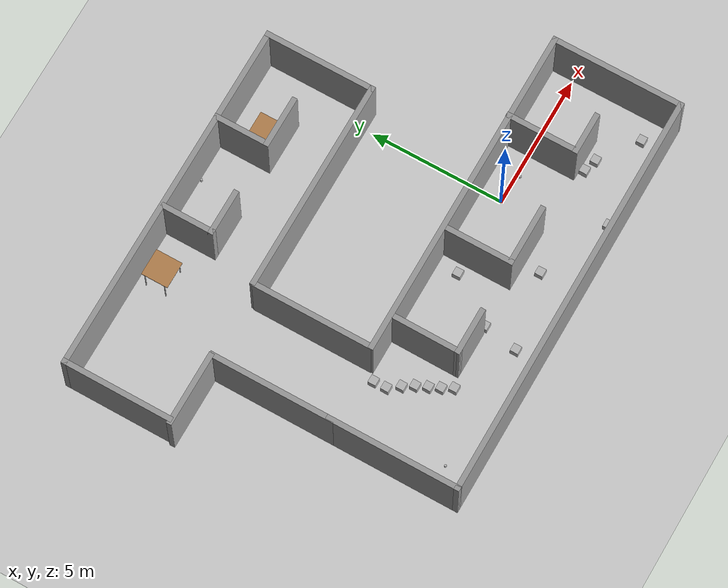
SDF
<sdf version="1.4">
 <world name="default">
  <physics type="ode">
   <gravity>0 0 -9.81</gravity>
   <ode>
    <solver><type>quick</type><iters>20</iters><sor>1</sor></solver>
    <constraints>
     <cfm>0</cfm>
     <erp>0.2</erp>
     <contact_max_correcting_vel>100</contact_max_correcting_vel>
     <contact_surface_layer>0</contact_surface_layer>
    </constraints>
   </ode>
   <real_time_update_rate>1000</real_time_update_rate>
   <max_step_size>0.001</max_step_size>
   <real_time_factor>1</real_time_factor>
  </physics>
  <light name="light1" type="directional">
   <pose>-2 0 4 0 -0 0</pose>
   <diffuse>1 1 1 1</diffuse>
   <specular>0.1 0.1 0.1 1</specular>
   <attenuation>
    <range>20</range>
    <constant>0.9</constant>
    <linear>0.01</linear>
    <quadratic>0.001</quadratic>
   </attenuation>
   <direction>0.2 0 -1</direction>
  </light>
  <model name="ground_plane">
   <static>1</static>
   <link name="link">
    <collision name="collision">
     <geometry><plane><normal>0 0 1</normal><size>100 100</size></plane></geometry>
     <surface><friction><ode><mu>100</mu><mu2>50</mu2></ode></friction></surface>
    </collision>
    <visual name="visual">
     <cast_shadows>0</cast_shadows>
     <geometry><plane><normal>0 0 1</normal><size>100 100</size></plane></geometry>
     <material>
      <script><uri>file://media/materials/scripts/gazebo.material</uri><name>Gazebo/Grey</name></script>
     </material>
    </visual>
    <velocity_decay><linear>0</linear><angular>0</angular></velocity_decay>
   </link>
  </model>
  <model name="building4">
   <pose>0.0604 0.08053 0 0 -0 0</pose>
   <link name="Wall_13">
    <collision name="Wall_13_Collision">
     <geometry><box><size>5.01 0.2 2.5</size></box></geometry>
     <pose>0 0 1.25 0 -0 0</pose>
    </collision>
    <visual name="Wall_13_Visual">
     <pose>0 0 1.25 0 -0 0</pose>
     <geometry><box><size>5.01 0.2 2.5</size></box></geometry>
     <material>
      <script><uri>file://media/materials/scripts/gazebo.material</uri><name>Gazebo/Grey</name></script>
     </material>
    </visual>
    <velocity_decay><linear>0</linear><angular>0</angular></velocity_decay>
    <pose>-10.233 -1.616 0 0 0 -1.5708</pose>
   </link>
   <link name="Wall_14">
    <collision name="Wall_14_Collision">
     <geometry><box><size>15.55 0.2 2.5</size></box></geometry>
     <pose>0 0 1.25 0 -0 0</pose>
    </collision>
    <visual name="Wall_14_Visual">
     <pose>0 0 1.25 0 -0 0</pose>
     <geometry><box><size>15.55 0.2 2.5</size></box></geometry>
     <material>
      <script><uri>file://media/materials/scripts/gazebo.material</uri><name>Gazebo/Grey</name></script>
     </material>
    </visual>
    <velocity_decay><linear>0</linear><angular>0</angular></velocity_decay>
    <pose>-2.55804 -4.02081 0 0 -0 2.5e-05</pose>
   </link>
   <link name="Wall_15">
    <collision name="Wall_15_Collision">
     <geometry><box><size>5.01 0.2 2.5</size></box></geometry>
     <pose>0 0 1.25 0 -0 0</pose>
    </collision>
    <visual name="Wall_15_Visual">
     <pose>0 0 1.25 0 -0 0</pose>
     <geometry><box><size>5.01 0.2 2.5</size></box></geometry>
     <material>
      <script><uri>file://media/materials/scripts/gazebo.material</uri><name>Gazebo/Grey</name></script>
     </material>
    </visual>
    <velocity_decay><linear>0</linear><angular>0</angular></velocity_decay>
    <pose>5.11693 -1.61562 0 0 -0 1.5708</pose>
   </link>
   <link name="Wall_16">
    <collision name="Wall_16_Collision">
     <geometry><box><size>12.72 0.2 2.5</size></box></geometry>
     <pose>0 0 1.25 0 -0 0</pose>
    </collision>
    <visual name="Wall_16_Visual">
     <pose>0 0 1.25 0 -0 0</pose>
     <geometry><box><size>12.72 0.2 2.5</size></box></geometry>
     <material>
      <script><uri>file://media/materials/scripts/gazebo.material</uri><name>Gazebo/Grey</name></script>
     </material>
    </visual>
    <velocity_decay><linear>0</linear><angular>0</angular></velocity_decay>
    <pose>-1.14308 0.789383 0 0 -0 3.14159</pose>
   </link>
   <link name="Wall_19">
    <collision name="Wall_19_Collision">
     <geometry><box><size>2.75243 0.2 2.5</size></box></geometry>
     <pose>0 0 1.25 0 -0 0</pose>
    </collision>
    <visual name="Wall_19_Visual">
     <pose>0 0 1.25 0 -0 0</pose>
     <geometry><box><size>2.75243 0.2 2.5</size></box></geometry>
     <material>
      <script><uri>file://media/materials/scripts/gazebo.material</uri><name>Gazebo/Grey</name></script>
     </material>
    </visual>
    <velocity_decay><linear>0</linear><angular>0</angular></velocity_decay>
    <pose>1.95298 -0.471453 0 0 0 -1.5708</pose>
   </link>
   <link name="Wall_20">
    <collision name="Wall_20_Collision">
     <geometry><box><size>1.61606 0.2 2.5</size></box></geometry>
     <pose>0 0 1.25 0 -0 0</pose>
    </collision>
    <visual name="Wall_20_Visual">
     <pose>0 0 1.25 0 -0 0</pose>
     <geometry><box><size>1.61606 0.2 2.5</size></box></geometry>
     <material>
      <script><uri>file://media/materials/scripts/gazebo.material</uri><name>Gazebo/Grey</name></script>
     </material>
    </visual>
    <velocity_decay><linear>0</linear><angular>0</angular></velocity_decay>
    <pose>2.66102 -1.74767 0 0 -0 0</pose>
   </link>
   <link name="Wall_22">
    <collision name="Wall_22_Collision">
     <geometry><box><size>2.69952 0.2 2.5</size></box></geometry>
     <pose>0 0 1.25 0 -0 0</pose>
    </collision>
    <visual name="Wall_22_Visual">
     <pose>0 0 1.25 0 -0 0</pose>
     <geometry><box><size>2.69952 0.2 2.5</size></box></geometry>
     <material>
      <script><uri>file://media/materials/scripts/gazebo.material</uri><name>Gazebo/Grey</name></script>
     </material>
    </visual>
    <velocity_decay><linear>0</linear><angular>0</angular></velocity_decay>
    <pose>-2.56997 -0.511128 0 0 0 -1.5708</pose>
   </link>
   <link name="Wall_23">
    <collision name="Wall_23_Collision">
     <geometry><box><size>2.34347 0.2 2.5</size></box></geometry>
     <pose>0 0 1.25 0 -0 0</pose>
    </collision>
    <visual name="Wall_23_Visual">
     <pose>0 0 1.25 0 -0 0</pose>
     <geometry><box><size>2.34347 0.2 2.5</size></box></geometry>
     <material>
      <script><uri>file://media/materials/scripts/gazebo.material</uri><name>Gazebo/Grey</name></script>
     </material>
    </visual>
    <velocity_decay><linear>0</linear><angular>0</angular></velocity_decay>
    <pose>-1.49823 -1.76089 0 0 -0 0</pose>
   </link>
   <link name="Wall_27">
    <collision name="Wall_27_Collision">
     <geometry><box><size>2.67304 0.2 2.5</size></box></geometry>
     <pose>0 0 1.25 0 -0 0</pose>
    </collision>
    <visual name="Wall_27_Visual">
     <pose>0 0 1.25 0 -0 0</pose>
     <geometry><box><size>2.67304 0.2 2.5</size></box></geometry>
     <material>
      <script><uri>file://media/materials/scripts/gazebo.material</uri><name>Gazebo/Grey</name></script>
     </material>
    </visual>
    <velocity_decay><linear>0</linear><angular>0</angular></velocity_decay>
    <pose>-6.134 -0.5245 0 0 0 -1.57646</pose>
   </link>
   <link name="Wall_28">
    <collision name="Wall_28_Collision">
     <geometry><box><size>1.78778 0.2 2.5</size></box></geometry>
     <pose>0 0 1.25 0 -0 0</pose>
    </collision>
    <visual name="Wall_28_Visual">
     <pose>0 0 1.25 0 -0 0</pose>
     <geometry><box><size>1.78778 0.2 2.5</size></box></geometry>
     <material>
      <script><uri>file://media/materials/scripts/gazebo.material</uri><name>Gazebo/Grey</name></script>
     </material>
    </visual>
    <velocity_decay><linear>0</linear><angular>0</angular></velocity_decay>
    <pose>-5.34711 -1.761 0 0 -0 0</pose>
   </link>
   <link name="Wall_30">
    <collision name="Wall_30_Collision">
     <geometry><box><size>4.722 0.2 2.5</size></box></geometry>
     <pose>0 0 1.25 0 -0 0</pose>
    </collision>
    <visual name="Wall_30_Visual">
     <pose>0 0 1.25 0 -0 0</pose>
     <geometry><box><size>4.722 0.2 2.5</size></box></geometry>
     <material>
      <script><uri>file://media/materials/scripts/gazebo.material</uri><name>Gazebo/Grey</name></script>
     </material>
    </visual>
    <velocity_decay><linear>0</linear><angular>0</angular></velocity_decay>
    <pose>-10.233 2.952 0 0 -0 1.5708</pose>
   </link>
   <link name="Wall_32">
    <collision name="Wall_32_Collision">
     <geometry><box><size>4.52699 0.2 2.5</size></box></geometry>
     <pose>0 0 1.25 0 -0 0</pose>
    </collision>
    <visual name="Wall_32_Visual">
     <pose>0 0 1.25 0 -0 0</pose>
     <geometry><box><size>4.52699 0.2 2.5</size></box></geometry>
     <material>
      <script><uri>file://media/materials/scripts/gazebo.material</uri><name>Gazebo/Grey</name></script>
     </material>
    </visual>
    <velocity_decay><linear>0</linear><angular>0</angular></velocity_decay>
    <pose>-7.41943 3.02427 0 0 -0 1.5708</pose>
   </link>
   <link name="Wall_35">
    <collision name="Wall_35_Collision">
     <geometry><box><size>2.80534 0.2 2.5</size></box></geometry>
     <pose>0 0 1.25 0 -0 0</pose>
    </collision>
    <visual name="Wall_35_Visual">
     <pose>0 0 1.25 0 -0 0</pose>
     <geometry><box><size>2.80534 0.2 2.5</size></box></geometry>
     <material>
      <script><uri>file://media/materials/scripts/gazebo.material</uri><name>Gazebo/Grey</name></script>
     </material>
    </visual>
    <velocity_decay><linear>0</linear><angular>0</angular></velocity_decay>
    <pose>-11.5868 5.23749 0 0 -0 3.14159</pose>
   </link>
   <link name="Wall_38">
    <collision name="Wall_38_Collision">
     <geometry><box><size>4.19003 0.2 2.5</size></box></geometry>
     <pose>0 0 1.25 0 -0 0</pose>
    </collision>
    <visual name="Wall_38_Visual">
     <pose>0 0 1.25 0 -0 0</pose>
     <geometry><box><size>4.19003 0.2 2.5</size></box></geometry>
     <material>
      <script><uri>file://media/materials/scripts/gazebo.material</uri><name>Gazebo/Grey</name></script>
     </material>
    </visual>
    <velocity_decay><linear>0</linear><angular>0</angular></velocity_decay>
    <pose>-12.8151 7.30342 0 0 -0 1.5708</pose>
   </link>
   <link name="Wall_39">
    <collision name="Wall_39_Collision">
     <geometry><box><size>13.5347 0.2 2.5</size></box></geometry>
     <pose>0 0 1.25 0 -0 0</pose>
    </collision>
    <visual name="Wall_39_Visual">
     <pose>0 0 1.25 0 -0 0</pose>
     <geometry><box><size>13.5347 0.2 2.5</size></box></geometry>
     <material>
      <script><uri>file://media/materials/scripts/gazebo.material</uri><name>Gazebo/Grey</name></script>
     </material>
    </visual>
    <velocity_decay><linear>0</linear><angular>0</angular></velocity_decay>
    <pose>-6.14777 9.29843 0 0 -0 0</pose>
   </link>
   <link name="Wall_40">
    <collision name="Wall_40_Collision">
     <geometry><box><size>4.21663 0.2 2.5</size></box></geometry>
     <pose>0 0 1.25 0 -0 0</pose>
    </collision>
    <visual name="Wall_40_Visual">
     <pose>0 0 1.25 0 -0 0</pose>
     <geometry><box><size>4.21663 0.2 2.5</size></box></geometry>
     <material>
      <script><uri>file://media/materials/scripts/gazebo.material</uri><name>Gazebo/Grey</name></script>
     </material>
    </visual>
    <velocity_decay><linear>0</linear><angular>0</angular></velocity_decay>
    <pose>0.51957 7.29012 0 0 0 -1.5708</pose>
   </link>
   <link name="Wall_41">
    <collision name="Wall_41_Collision">
     <geometry><box><size>8.1083 0.2 2.5</size></box></geometry>
     <pose>0 0 1.25 0 -0 0</pose>
    </collision>
    <visual name="Wall_41_Visual">
     <pose>0 0 1.25 0 -0 0</pose>
     <geometry><box><size>8.1083 0.2 2.5</size></box></geometry>
     <material>
      <script><uri>file://media/materials/scripts/gazebo.material</uri><name>Gazebo/Grey</name></script>
     </material>
    </visual>
    <velocity_decay><linear>0</linear><angular>0</angular></velocity_decay>
    <pose>-3.43455 5.2818 0 0 -0 3.14159</pose>
   </link>
   <link name="Wall_43">
    <collision name="Wall_43_Collision">
     <geometry><box><size>2.14297 0.2 2.5</size></box></geometry>
     <pose>0 0 1.25 0 -0 0</pose>
    </collision>
    <visual name="Wall_43_Visual">
     <pose>0 0 1.25 0 -0 0</pose>
     <geometry><box><size>2.14297 0.2 2.5</size></box></geometry>
     <material>
      <script><uri>file://media/materials/scripts/gazebo.material</uri><name>Gazebo/Grey</name></script>
     </material>
    </visual>
    <velocity_decay><linear>0</linear><angular>0</angular></velocity_decay>
    <pose>-2.91992 8.32953 0 0 0 -1.5708</pose>
   </link>
   <link name="Wall_44">
    <collision name="Wall_44_Collision">
     <geometry><box><size>1.98106 0.2 2.5</size></box></geometry>
     <pose>0 0 1.25 0 -0 0</pose>
    </collision>
    <visual name="Wall_44_Visual">
     <pose>0 0 1.25 0 -0 0</pose>
     <geometry><box><size>1.98106 0.2 2.5</size></box></geometry>
     <material>
      <script><uri>file://media/materials/scripts/gazebo.material</uri><name>Gazebo/Grey</name></script>
     </material>
    </visual>
    <velocity_decay><linear>0</linear><angular>0</angular></velocity_decay>
    <pose>-2.02939 7.35804 0 0 -0 0</pose>
   </link>
   <link name="Wall_54">
    <collision name="Wall_54_Collision">
     <geometry><box><size>2.03541 0.2 2.5</size></box></geometry>
     <pose>0 0 1.25 0 -0 0</pose>
    </collision>
    <visual name="Wall_54_Visual">
     <pose>0 0 1.25 0 -0 0</pose>
     <geometry><box><size>2.03541 0.2 2.5</size></box></geometry>
     <material>
      <script><uri>file://media/materials/scripts/gazebo.material</uri><name>Gazebo/Grey</name></script>
     </material>
    </visual>
    <velocity_decay><linear>0</linear><angular>0</angular></velocity_decay>
    <pose>-6.52977 8.31143 0 0 0 -1.5708</pose>
   </link>
   <link name="Wall_55">
    <collision name="Wall_55_Collision">
     <geometry><box><size>1.7601 0.2 2.5</size></box></geometry>
     <pose>0 0 1.25 0 -0 0</pose>
    </collision>
    <visual name="Wall_55_Visual">
     <pose>0 0 1.25 0 -0 0</pose>
     <geometry><box><size>1.7601 0.2 2.5</size></box></geometry>
     <material>
      <script><uri>file://media/materials/scripts/gazebo.material</uri><name>Gazebo/Grey</name></script>
     </material>
    </visual>
    <velocity_decay><linear>0</linear><angular>0</angular></velocity_decay>
    <pose>-5.74972 7.39373 0 0 -0 0</pose>
   </link>
   <static>1</static>
  </model>
  <scene><ambient>0.4 0.4 0.4 1</ambient><background>0.7 0.7 0.7 1</background><shadows>1</shadows></scene>
  <spherical_coordinates>
   <surface_model>EARTH_WGS84</surface_model>
   <latitude_deg>0</latitude_deg>
   <longitude_deg>0</longitude_deg>
   <elevation>0</elevation>
   <heading_deg>0</heading_deg>
  </spherical_coordinates>
  <model name="cocacola">
   <static>0</static>
   <link name="link">
    <inertial>
     <mass>0.25</mass>
     <inertia><ixx>0</ixx><ixy>0</ixy><ixz>0</ixz><iyy>0</iyy><iyz>0</iyz><izz>0</izz></inertia>
    </inertial>
    <collision name="collision">
     <pose>0 0 0.075 -3.14159 -0 0</pose>
     <geometry><cylinder><radius>0.04</radius><length>0.15</length></cylinder></geometry>
    </collision>
    <visual name="visual">
     <pose>0 0 0.075 -3.14159 -0 0</pose>
     <geometry><cylinder><radius>0.04</radius><length>0.15</length></cylinder></geometry>
     <material>
      <script>
       <uri>model://cocacola/material/scripts</uri>
       <uri>model://cocacola/material/textures</uri>
       <name>Custom/cocacola</name>
      </script>
     </material>
    </visual>
    <velocity_decay><linear>0</linear><angular>0</angular></velocity_decay>
   </link>
   <pose>2.68091 -0.744272 0.300007 -0.000153 -0.000369 2e-05</pose>
  </model>
  <model name="cocacola_0">
   <static>0</static>
   <link name="link">
    <inertial>
     <mass>0.25</mass>
     <inertia><ixx>0</ixx><ixy>0</ixy><ixz>0</ixz><iyy>0</iyy><iyz>0</iyz><izz>0</izz></inertia>
    </inertial>
    <collision name="collision">
     <pose>0 0 0.075 -3.14159 -0 0</pose>
     <geometry><cylinder><radius>0.04</radius><length>0.15</length></cylinder></geometry>
    </collision>
    <visual name="visual">
     <pose>0 0 0.075 -3.14159 -0 0</pose>
     <geometry><cylinder><radius>0.04</radius><length>0.15</length></cylinder></geometry>
     <material>
      <script>
       <uri>model://cocacola/material/scripts</uri>
       <uri>model://cocacola/material/textures</uri>
       <name>Custom/cocacola</name>
      </script>
     </material>
    </visual>
    <velocity_decay><linear>0</linear><angular>0</angular></velocity_decay>
   </link>
   <pose>1 -0.177691 0.300009 2.5e-05 -0.000214 1e-06</pose>
  </model>
  <model name="cocacola_1">
   <static>0</static>
   <link name="link">
    <inertial>
     <mass>0.25</mass>
     <inertia><ixx>0</ixx><ixy>0</ixy><ixz>0</ixz><iyy>0</iyy><iyz>0</iyz><izz>0</izz></inertia>
    </inertial>
    <collision name="collision">
     <pose>0 0 0.075 -3.14159 -0 0</pose>
     <geometry><cylinder><radius>0.04</radius><length>0.15</length></cylinder></geometry>
    </collision>
    <visual name="visual">
     <pose>0 0 0.075 -3.14159 -0 0</pose>
     <geometry><cylinder><radius>0.04</radius><length>0.15</length></cylinder></geometry>
     <material>
      <script>
       <uri>model://cocacola/material/scripts</uri>
       <uri>model://cocacola/material/textures</uri>
       <name>Custom/cocacola</name>
      </script>
     </material>
    </visual>
    <velocity_decay><linear>0</linear><angular>0</angular></velocity_decay>
   </link>
   <pose>-9.25325 -3 0.660008 4.1e-05 -0.000208 0</pose>
  </model>
  <model name="table_1m">
   <static>1</static>
   <link name="link">
    <collision name="surface">
     <pose>0 0 1.01 0 -0 0</pose>
     <geometry><box><size>1 1.01 0.03</size></box></geometry>
    </collision>
    <visual name="visual1">
     <pose>0 0 1.01 0 -0 0</pose>
     <geometry><box><size>1 1.01 0.03</size></box></geometry>
     <material>
      <script><uri>file://media/materials/scripts/gazebo.material</uri><name>Gazebo/Wood</name></script>
     </material>
    </visual>
    <collision name="front_left_leg">
     <pose>0.48 0.38 0.5005 0 -0 0</pose>
     <geometry><cylinder><radius>0.02</radius><length>1.01</length></cylinder></geometry>
    </collision>
    <visual name="front_left_leg">
     <pose>0.48 0.38 0.5005 0 -0 0</pose>
     <geometry><cylinder><radius>0.02</radius><length>1.01</length></cylinder></geometry>
     <material>
      <script><uri>file://media/materials/scripts/gazebo.material</uri><name>Gazebo/Grey</name></script>
     </material>
    </visual>
    <collision name="front_right_leg">
     <pose>0.48 -0.38 0.5005 0 -0 0</pose>
     <geometry><cylinder><radius>0.02</radius><length>1.01</length></cylinder></geometry>
    </collision>
    <visual name="front_right_leg">
     <pose>0.48 -0.38 0.5005 0 -0 0</pose>
     <geometry><cylinder><radius>0.02</radius><length>1.01</length></cylinder></geometry>
     <material>
      <script><uri>file://media/materials/scripts/gazebo.material</uri><name>Gazebo/Grey</name></script>
     </material>
    </visual>
    <collision name="back_right_leg">
     <pose>-0.48 -0.38 0.5005 0 -0 0</pose>
     <geometry><cylinder><radius>0.02</radius><length>1.01</length></cylinder></geometry>
    </collision>
    <visual name="back_right_leg">
     <pose>-0.48 -0.38 0.5005 0 -0 0</pose>
     <geometry><cylinder><radius>0.02</radius><length>1.01</length></cylinder></geometry>
     <material>
      <script><uri>file://media/materials/scripts/gazebo.material</uri><name>Gazebo/Grey</name></script>
     </material>
    </visual>
    <collision name="back_left_leg">
     <pose>-0.48 0.38 0.5005 0 -0 0</pose>
     <geometry><cylinder><radius>0.02</radius><length>1.01</length></cylinder></geometry>
    </collision>
    <visual name="back_left_leg">
     <pose>-0.48 0.38 0.5005 0 -0 0</pose>
     <geometry><cylinder><radius>0.02</radius><length>1.01</length></cylinder></geometry>
     <material>
      <script><uri>file://media/materials/scripts/gazebo.material</uri><name>Gazebo/Grey</name></script>
     </material>
    </visual>
    <velocity_decay><linear>0</linear><angular>0</angular></velocity_decay>
   </link>
   <pose>-8 8.5652 0 0 -0 0</pose>
  </model>
  <model name="cocacola_3">
   <static>0</static>
   <link name="link">
    <inertial>
     <mass>0.25</mass>
     <inertia><ixx>0</ixx><ixy>0</ixy><ixz>0</ixz><iyy>0</iyy><iyz>0</iyz><izz>0</izz></inertia>
    </inertial>
    <collision name="collision">
     <pose>0 0 0.075 -3.14159 -0 0</pose>
     <geometry><cylinder><radius>0.04</radius><length>0.15</length></cylinder></geometry>
    </collision>
    <visual name="visual">
     <pose>0 0 0.075 -3.14159 -0 0</pose>
     <geometry><cylinder><radius>0.04</radius><length>0.15</length></cylinder></geometry>
     <material>
      <script>
       <uri>model://cocacola/material/scripts</uri>
       <uri>model://cocacola/material/textures</uri>
       <name>Custom/cocacola</name>
      </script>
     </material>
    </visual>
    <velocity_decay><linear>0</linear><angular>0</angular></velocity_decay>
   </link>
   <pose>-4.52272 9.0837 0.609999 3.2e-05 -0.000212 4e-06</pose>
  </model>
  <model name="table_1m_0">
   <static>1</static>
   <link name="link">
    <collision name="surface">
     <pose>0 0 1.01 0 -0 0</pose>
     <geometry><box><size>1 1.01 0.03</size></box></geometry>
    </collision>
    <visual name="visual1">
     <pose>0 0 1.01 0 -0 0</pose>
     <geometry><box><size>1 1.01 0.03</size></box></geometry>
     <material>
      <script><uri>file://media/materials/scripts/gazebo.material</uri><name>Gazebo/Wood</name></script>
     </material>
    </visual>
    <collision name="front_left_leg">
     <pose>0.48 0.38 0.5005 0 -0 0</pose>
     <geometry><cylinder><radius>0.02</radius><length>1.01</length></cylinder></geometry>
    </collision>
    <visual name="front_left_leg">
     <pose>0.48 0.38 0.5005 0 -0 0</pose>
     <geometry><cylinder><radius>0.02</radius><length>1.01</length></cylinder></geometry>
     <material>
      <script><uri>file://media/materials/scripts/gazebo.material</uri><name>Gazebo/Grey</name></script>
     </material>
    </visual>
    <collision name="front_right_leg">
     <pose>0.48 -0.38 0.5005 0 -0 0</pose>
     <geometry><cylinder><radius>0.02</radius><length>1.01</length></cylinder></geometry>
    </collision>
    <visual name="front_right_leg">
     <pose>0.48 -0.38 0.5005 0 -0 0</pose>
     <geometry><cylinder><radius>0.02</radius><length>1.01</length></cylinder></geometry>
     <material>
      <script><uri>file://media/materials/scripts/gazebo.material</uri><name>Gazebo/Grey</name></script>
     </material>
    </visual>
    <collision name="back_right_leg">
     <pose>-0.48 -0.38 0.5005 0 -0 0</pose>
     <geometry><cylinder><radius>0.02</radius><length>1.01</length></cylinder></geometry>
    </collision>
    <visual name="back_right_leg">
     <pose>-0.48 -0.38 0.5005 0 -0 0</pose>
     <geometry><cylinder><radius>0.02</radius><length>1.01</length></cylinder></geometry>
     <material>
      <script><uri>file://media/materials/scripts/gazebo.material</uri><name>Gazebo/Grey</name></script>
     </material>
    </visual>
    <collision name="back_left_leg">
     <pose>-0.48 0.38 0.5005 0 -0 0</pose>
     <geometry><cylinder><radius>0.02</radius><length>1.01</length></cylinder></geometry>
    </collision>
    <visual name="back_left_leg">
     <pose>-0.48 0.38 0.5005 0 -0 0</pose>
     <geometry><cylinder><radius>0.02</radius><length>1.01</length></cylinder></geometry>
     <material>
      <script><uri>file://media/materials/scripts/gazebo.material</uri><name>Gazebo/Grey</name></script>
     </material>
    </visual>
    <velocity_decay><linear>0</linear><angular>0</angular></velocity_decay>
   </link>
   <pose>-2 8 0 0 -0 0</pose>
  </model>
  <model name="box">
   <static>0</static>
   <link name="box">
    <pose>0 0 0.5 0 -0 0</pose>
    <collision name="collision"><geometry><box><size>0.3 0.3 0.3</size></box></geometry></collision>
    <visual name="visual">
     <geometry><box><size>0.3 0.3 0.3</size></box></geometry>
     <material>
      <script>
       <uri>model://box/material/scripts</uri>
       <uri>model://box/material/textures</uri>
       <name>Custom/box</name>
      </script>
     </material>
    </visual>
    <velocity_decay><linear>0</linear><angular>0</angular></velocity_decay>
    <inertial>
     <inertia><ixx>1</ixx><ixy>0</ixy><ixz>0</ixz><iyy>1</iyy><iyz>0</iyz><izz>1</izz></inertia>
     <mass>1</mass>
    </inertial>
   </link>
   <pose>-4.1878 -1.68813 -0.35 -1e-06 1e-06 2.8e-05</pose>
  </model>
  <model name="box_0">
   <static>0</static>
   <link name="box">
    <pose>0 0 0.5 0 -0 0</pose>
    <collision name="collision"><geometry><box><size>0.3 0.3 0.3</size></box></geometry></collision>
    <visual name="visual">
     <geometry><box><size>0.3 0.3 0.3</size></box></geometry>
     <material>
      <script>
       <uri>model://box/material/scripts</uri>
       <uri>model://box/material/textures</uri>
       <name>Custom/box</name>
      </script>
     </material>
    </visual>
    <velocity_decay><linear>0</linear><angular>0</angular></velocity_decay>
    <inertial>
     <inertia><ixx>1</ixx><ixy>0</ixy><ixz>0</ixz><iyy>1</iyy><iyz>0</iyz><izz>1</izz></inertia>
     <mass>1</mass>
    </inertial>
   </link>
   <pose>-4.41164 -3 -0.35 0 0 -0.000127</pose>
  </model>
  <model name="box_1">
   <static>0</static>
   <link name="box">
    <pose>0 0 0.5 0 -0 0</pose>
    <collision name="collision"><geometry><box><size>0.3 0.3 0.3</size></box></geometry></collision>
    <visual name="visual">
     <geometry><box><size>0.3 0.3 0.3</size></box></geometry>
     <material>
      <script>
       <uri>model://box/material/scripts</uri>
       <uri>model://box/material/textures</uri>
       <name>Custom/box</name>
      </script>
     </material>
    </visual>
    <velocity_decay><linear>0</linear><angular>0</angular></velocity_decay>
    <inertial>
     <inertia><ixx>1</ixx><ixy>0</ixy><ixz>0</ixz><iyy>1</iyy><iyz>0</iyz><izz>1</izz></inertia>
     <mass>1</mass>
    </inertial>
   </link>
   <pose>-1.60972 -2.39966 -0.35 -3e-06 -2e-06 1.6e-05</pose>
  </model>
  <model name="box_2">
   <static>0</static>
   <link name="box">
    <pose>0 0 0.5 0 -0 0</pose>
    <collision name="collision"><geometry><box><size>0.3 0.3 0.3</size></box></geometry></collision>
    <visual name="visual">
     <geometry><box><size>0.3 0.3 0.3</size></box></geometry>
     <material>
      <script>
       <uri>model://box/material/scripts</uri>
       <uri>model://box/material/textures</uri>
       <name>Custom/box</name>
      </script>
     </material>
    </visual>
    <velocity_decay><linear>0</linear><angular>0</angular></velocity_decay>
    <inertial>
     <inertia><ixx>1</ixx><ixy>0</ixy><ixz>0</ixz><iyy>1</iyy><iyz>0</iyz><izz>1</izz></inertia>
     <mass>1</mass>
    </inertial>
   </link>
   <pose>2.85231 -2.08921 -0.35 0 -0 6e-06</pose>
  </model>
  <model name="box_3">
   <static>0</static>
   <link name="box">
    <pose>0 0 0.5 0 -0 0</pose>
    <collision name="collision"><geometry><box><size>0.3 0.3 0.3</size></box></geometry></collision>
    <visual name="visual">
     <geometry><box><size>0.3 0.3 0.3</size></box></geometry>
     <material>
      <script>
       <uri>model://box/material/scripts</uri>
       <uri>model://box/material/textures</uri>
       <name>Custom/box</name>
      </script>
     </material>
    </visual>
    <velocity_decay><linear>0</linear><angular>0</angular></velocity_decay>
    <inertial>
     <inertia><ixx>1</ixx><ixy>0</ixy><ixz>0</ixz><iyy>1</iyy><iyz>0</iyz><izz>1</izz></inertia>
     <mass>1</mass>
    </inertial>
   </link>
   <pose>2.35187 -1.93846 -0.35 -1e-06 1e-06 3e-06</pose>
  </model>
  <model name="box_4">
   <static>0</static>
   <link name="box">
    <pose>0 0 0.5 0 -0 0</pose>
    <collision name="collision"><geometry><box><size>0.3 0.3 0.3</size></box></geometry></collision>
    <visual name="visual">
     <geometry><box><size>0.3 0.3 0.3</size></box></geometry>
     <material>
      <script>
       <uri>model://box/material/scripts</uri>
       <uri>model://box/material/textures</uri>
       <name>Custom/box</name>
      </script>
     </material>
    </visual>
    <velocity_decay><linear>0</linear><angular>0</angular></velocity_decay>
    <inertial>
     <inertia><ixx>1</ixx><ixy>0</ixy><ixz>0</ixz><iyy>1</iyy><iyz>0</iyz><izz>1</izz></inertia>
     <mass>1</mass>
    </inertial>
   </link>
   <pose>-5.79608 -1.34698 -0.35 -1e-06 -1e-06 -2.1e-05</pose>
  </model>
  <model name="box_5">
   <static>0</static>
   <link name="box">
    <pose>0 0 0.5 0 -0 0</pose>
    <collision name="collision"><geometry><box><size>0.3 0.3 0.3</size></box></geometry></collision>
    <visual name="visual">
     <geometry><box><size>0.3 0.3 0.3</size></box></geometry>
     <material>
      <script>
       <uri>model://box/material/scripts</uri>
       <uri>model://box/material/textures</uri>
       <name>Custom/box</name>
      </script>
     </material>
    </visual>
    <velocity_decay><linear>0</linear><angular>0</angular></velocity_decay>
    <inertial>
     <inertia><ixx>1</ixx><ixy>0</ixy><ixz>0</ixz><iyy>1</iyy><iyz>0</iyz><izz>1</izz></inertia>
     <mass>1</mass>
    </inertial>
   </link>
   <pose>-5.76863 0.577742 -0.349998 -1.2e-05 -5.16988e-26 2.2e-05</pose>
  </model>
  <model name="box_6">
   <static>0</static>
   <link name="box">
    <pose>0 0 0.5 0 -0 0</pose>
    <collision name="collision"><geometry><box><size>0.3 0.3 0.3</size></box></geometry></collision>
    <visual name="visual">
     <geometry><box><size>0.3 0.3 0.3</size></box></geometry>
     <material>
      <script>
       <uri>model://box/material/scripts</uri>
       <uri>model://box/material/textures</uri>
       <name>Custom/box</name>
      </script>
     </material>
    </visual>
    <velocity_decay><linear>0</linear><angular>0</angular></velocity_decay>
    <inertial>
     <inertia><ixx>1</ixx><ixy>0</ixy><ixz>0</ixz><iyy>1</iyy><iyz>0</iyz><izz>1</izz></inertia>
     <mass>1</mass>
    </inertial>
   </link>
   <pose>-3 -3e-06 -0.35 1e-06 -3.23117e-27 -2.1e-05</pose>
  </model>
  <model name="box_7">
   <static>0</static>
   <link name="box">
    <pose>0 0 0.5 0 -0 0</pose>
    <collision name="collision"><geometry><box><size>0.3 0.3 0.3</size></box></geometry></collision>
    <visual name="visual">
     <geometry><box><size>0.3 0.3 0.3</size></box></geometry>
     <material>
      <script>
       <uri>model://box/material/scripts</uri>
       <uri>model://box/material/textures</uri>
       <name>Custom/box</name>
      </script>
     </material>
    </visual>
    <velocity_decay><linear>0</linear><angular>0</angular></velocity_decay>
    <inertial>
     <inertia><ixx>1</ixx><ixy>0</ixy><ixz>0</ixz><iyy>1</iyy><iyz>0</iyz><izz>1</izz></inertia>
     <mass>1</mass>
    </inertial>
   </link>
   <pose>4.25413 -3.11364 -0.35 0 -0 6.1e-05</pose>
  </model>
  <model name="box_8">
   <static>0</static>
   <link name="box">
    <pose>0 0 0.5 0 -0 0</pose>
    <collision name="collision"><geometry><box><size>0.3 0.3 0.3</size></box></geometry></collision>
    <visual name="visual">
     <geometry><box><size>0.3 0.3 0.3</size></box></geometry>
     <material>
      <script>
       <uri>model://box/material/scripts</uri>
       <uri>model://box/material/textures</uri>
       <name>Custom/box</name>
      </script>
     </material>
    </visual>
    <velocity_decay><linear>0</linear><angular>0</angular></velocity_decay>
    <inertial>
     <inertia><ixx>1</ixx><ixy>0</ixy><ixz>0</ixz><iyy>1</iyy><iyz>0</iyz><izz>1</izz></inertia>
     <mass>1</mass>
    </inertial>
   </link>
   <pose>1 -3.58149 -0.35 1e-06 3.23117e-27 -2.2e-05</pose>
  </model>
  <model name="box_9">
   <static>0</static>
   <link name="box">
    <pose>0 0 0.5 0 -0 0</pose>
    <collision name="collision"><geometry><box><size>0.3 0.3 0.3</size></box></geometry></collision>
    <visual name="visual">
     <geometry><box><size>0.3 0.3 0.3</size></box></geometry>
     <material>
      <script>
       <uri>model://box/material/scripts</uri>
       <uri>model://box/material/textures</uri>
       <name>Custom/box</name>
      </script>
     </material>
    </visual>
    <velocity_decay><linear>0</linear><angular>0</angular></velocity_decay>
    <inertial>
     <inertia><ixx>1</ixx><ixy>0</ixy><ixz>0</ixz><iyy>1</iyy><iyz>0</iyz><izz>1</izz></inertia>
     <mass>1</mass>
    </inertial>
   </link>
   <pose>-6.59866 -1.86782 -0.35 -1e-06 1.29247e-26 4.1e-05</pose>
  </model>
  <model name="box_10">
   <static>0</static>
   <link name="box">
    <pose>0 0 0.5 0 -0 0</pose>
    <collision name="collision"><geometry><box><size>0.3 0.3 0.3</size></box></geometry></collision>
    <visual name="visual">
     <geometry><box><size>0.3 0.3 0.3</size></box></geometry>
     <material>
      <script>
       <uri>model://box/material/scripts</uri>
       <uri>model://box/material/textures</uri>
       <name>Custom/box</name>
      </script>
     </material>
    </visual>
    <velocity_decay><linear>0</linear><angular>0</angular></velocity_decay>
    <inertial>
     <inertia><ixx>1</ixx><ixy>0</ixy><ixz>0</ixz><iyy>1</iyy><iyz>0</iyz><izz>1</izz></inertia>
     <mass>1</mass>
    </inertial>
   </link>
   <pose>-6.80886 -1.48312 -0.35 0 -0 3e-06</pose>
  </model>
  <model name="box_11">
   <static>0</static>
   <link name="box">
    <pose>0 0 0.5 0 -0 0</pose>
    <collision name="collision"><geometry><box><size>0.3 0.3 0.3</size></box></geometry></collision>
    <visual name="visual">
     <geometry><box><size>0.3 0.3 0.3</size></box></geometry>
     <material>
      <script>
       <uri>model://box/material/scripts</uri>
       <uri>model://box/material/textures</uri>
       <name>Custom/box</name>
      </script>
     </material>
    </visual>
    <velocity_decay><linear>0</linear><angular>0</angular></velocity_decay>
    <inertial>
     <inertia><ixx>1</ixx><ixy>0</ixy><ixz>0</ixz><iyy>1</iyy><iyz>0</iyz><izz>1</izz></inertia>
     <mass>1</mass>
    </inertial>
   </link>
   <pose>-6.98829 -1.0947 -0.349999 -5e-06 4e-06 -6.3e-05</pose>
  </model>
  <model name="box_12">
   <static>0</static>
   <link name="box">
    <pose>0 0 0.5 0 -0 0</pose>
    <collision name="collision"><geometry><box><size>0.3 0.3 0.3</size></box></geometry></collision>
    <visual name="visual">
     <geometry><box><size>0.3 0.3 0.3</size></box></geometry>
     <material>
      <script>
       <uri>model://box/material/scripts</uri>
       <uri>model://box/material/textures</uri>
       <name>Custom/box</name>
      </script>
     </material>
    </visual>
    <velocity_decay><linear>0</linear><angular>0</angular></velocity_decay>
    <inertial>
     <inertia><ixx>1</ixx><ixy>0</ixy><ixz>0</ixz><iyy>1</iyy><iyz>0</iyz><izz>1</izz></inertia>
     <mass>1</mass>
    </inertial>
   </link>
   <pose>-7.16629 -0.687517 -0.35 -1e-06 -1e-06 1.6e-05</pose>
  </model>
  <model name="box_13">
   <static>0</static>
   <link name="box">
    <pose>0 0 0.5 0 -0 0</pose>
    <collision name="collision"><geometry><box><size>0.3 0.3 0.3</size></box></geometry></collision>
    <visual name="visual">
     <geometry><box><size>0.3 0.3 0.3</size></box></geometry>
     <material>
      <script>
       <uri>model://box/material/scripts</uri>
       <uri>model://box/material/textures</uri>
       <name>Custom/box</name>
      </script>
     </material>
    </visual>
    <velocity_decay><linear>0</linear><angular>0</angular></velocity_decay>
    <inertial>
     <inertia><ixx>1</ixx><ixy>0</ixy><ixz>0</ixz><iyy>1</iyy><iyz>0</iyz><izz>1</izz></inertia>
     <mass>1</mass>
    </inertial>
   </link>
   <pose>-7.40779 -0.304177 -0.35 0 0 -2e-06</pose>
  </model>
  <model name="box_14">
   <static>0</static>
   <link name="box">
    <pose>0 0 0.5 0 -0 0</pose>
    <collision name="collision"><geometry><box><size>0.3 0.3 0.3</size></box></geometry></collision>
    <visual name="visual">
     <geometry><box><size>0.3 0.3 0.3</size></box></geometry>
     <material>
      <script>
       <uri>model://box/material/scripts</uri>
       <uri>model://box/material/textures</uri>
       <name>Custom/box</name>
      </script>
     </material>
    </visual>
    <velocity_decay><linear>0</linear><angular>0</angular></velocity_decay>
    <inertial>
     <inertia><ixx>1</ixx><ixy>0</ixy><ixz>0</ixz><iyy>1</iyy><iyz>0</iyz><izz>1</izz></inertia>
     <mass>1</mass>
    </inertial>
   </link>
   <pose>-7.70276 0.112622 -0.349999 -7e-06 1.29247e-26 -1.2e-05</pose>
  </model>
  <model name="box_15">
   <static>0</static>
   <link name="box">
    <pose>0 0 0.5 0 -0 0</pose>
    <collision name="collision"><geometry><box><size>0.3 0.3 0.3</size></box></geometry></collision>
    <visual name="visual">
     <geometry><box><size>0.3 0.3 0.3</size></box></geometry>
     <material>
      <script>
       <uri>model://box/material/scripts</uri>
       <uri>model://box/material/textures</uri>
       <name>Custom/box</name>
      </script>
     </material>
    </visual>
    <velocity_decay><linear>0</linear><angular>0</angular></velocity_decay>
    <inertial>
     <inertia><ixx>1</ixx><ixy>0</ixy><ixz>0</ixz><iyy>1</iyy><iyz>0</iyz><izz>1</izz></inertia>
     <mass>1</mass>
    </inertial>
   </link>
   <pose>-7.71274 0.589896 -0.35 1e-06 -0 0</pose>
  </model>
 </world>
</sdf>
